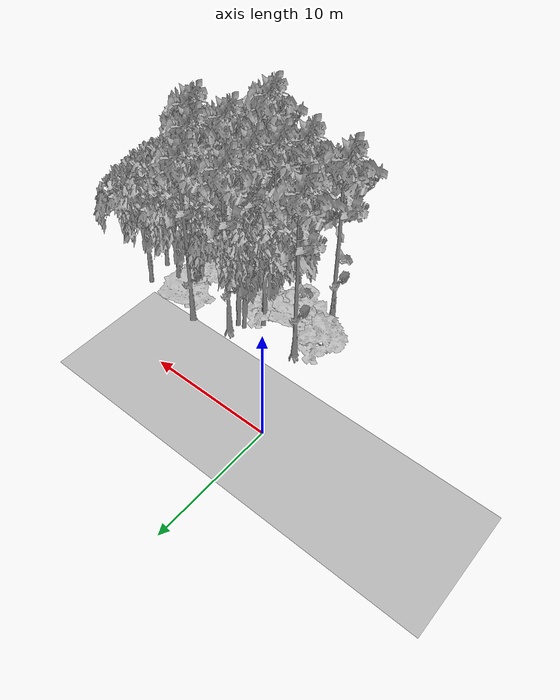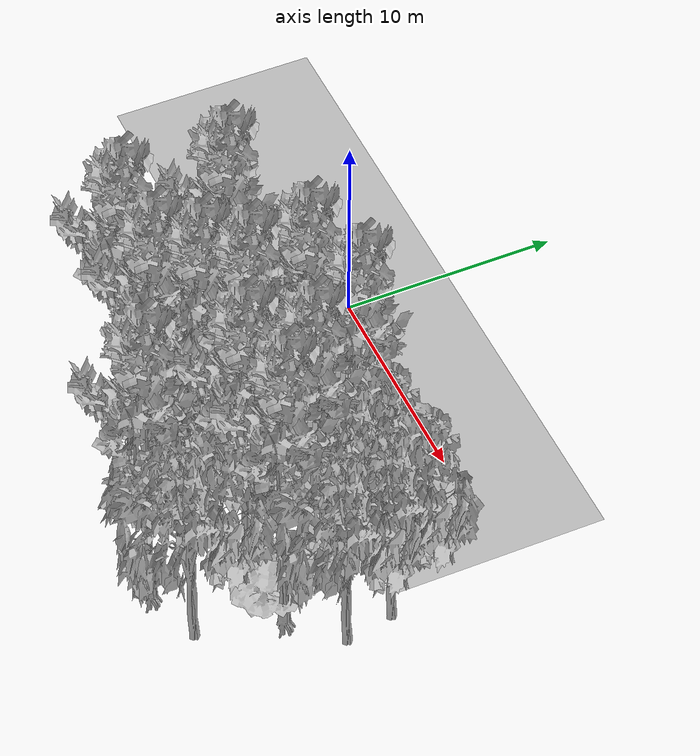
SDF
<sdf version="1.7">
 <world name="default">
  <model name="ground_plane">
   <static>1</static>
   <link name="link">
    <collision name="collision">
     <pose>-50 0 0 0 -0 0</pose>
     <geometry><plane><normal>0 0 1</normal><size>100 100</size></plane></geometry>
     <surface><contact><ode><min_depth>0.01</min_depth><max_vel>0</max_vel></ode></contact></surface>
    </collision>
    <visual name="grass">
     <cast_shadows>0</cast_shadows>
     <geometry>
      <mesh>
       <scale>0.5814285714285714 0.18142857142857144 0.1</scale>
       <uri>file://grass_plane/meshes/grass_plane.dae</uri>
      </mesh>
     </geometry>
    </visual>
   </link>
  </model>
  <model name="Tree 11">
   <static>1</static>
   <pose>17.115944217894665 -7.905770410894978 0 1.57079 -0 0</pose>
   <link name="link">
    <collision name="collision">
     <geometry><mesh><scale>3.5 5 3.5</scale><uri>model://tree_2/meshes/tree_2.obj</uri></mesh></geometry>
    </collision>
    <visual name="visual">
     <geometry><mesh><scale>3.5 5 3.5</scale><uri>model://tree_2/meshes/tree_2.obj</uri></mesh></geometry>
    </visual>
   </link>
  </model>
  <model name="Tree 62">
   <static>1</static>
   <pose>13.231138207050144 -8.463050441155573 0 1.57079 -0 0</pose>
   <link name="link">
    <collision name="collision">
     <geometry><mesh><scale>4 2.5 4</scale><uri>model://tree_1/meshes/tree_1.obj</uri></mesh></geometry>
    </collision>
    <visual name="visual">
     <geometry><mesh><scale>4 2.5 4</scale><uri>model://tree_1/meshes/tree_1.obj</uri></mesh></geometry>
    </visual>
   </link>
  </model>
  <model name="Tree 63">
   <static>1</static>
   <pose>8.307134985750139 -10.05008599282835 0 1.57079 -0 0</pose>
   <link name="link">
    <collision name="collision">
     <geometry><mesh><scale>3.5 5 3.5</scale><uri>model://tree_2/meshes/tree_2.obj</uri></mesh></geometry>
    </collision>
    <visual name="visual">
     <geometry><mesh><scale>3.5 5 3.5</scale><uri>model://tree_2/meshes/tree_2.obj</uri></mesh></geometry>
    </visual>
   </link>
  </model>
  <model name="Tree 74">
   <static>1</static>
   <pose>12.858057887556477 -6.079885390682374 0 1.57079 -0 0</pose>
   <link name="link">
    <collision name="collision">
     <geometry><mesh><scale>3 2 3</scale><uri>model://tree_3/meshes/tree_3.obj</uri></mesh></geometry>
    </collision>
    <visual name="visual">
     <geometry><mesh><scale>3 2 3</scale><uri>model://tree_3/meshes/tree_3.obj</uri></mesh></geometry>
    </visual>
   </link>
  </model>
  <model name="Tree 78">
   <static>1</static>
   <pose>11.570252639479634 -14.398460478798809 0 1.57079 -0 0</pose>
   <link name="link">
    <collision name="collision">
     <geometry><mesh><scale>3.5 5 3.5</scale><uri>model://tree_9/meshes/tree_9.obj</uri></mesh></geometry>
    </collision>
    <visual name="visual">
     <geometry><mesh><scale>3.5 5 3.5</scale><uri>model://tree_9/meshes/tree_9.obj</uri></mesh></geometry>
    </visual>
   </link>
  </model>
  <model name="Tree 92">
   <static>1</static>
   <pose>13.191549096305835 -7.757952104799223 0 1.57079 -0 0</pose>
   <link name="link">
    <collision name="collision">
     <geometry><mesh><scale>3.5 5 3.5</scale><uri>model://tree_9/meshes/tree_9.obj</uri></mesh></geometry>
    </collision>
    <visual name="visual">
     <geometry><mesh><scale>3.5 5 3.5</scale><uri>model://tree_9/meshes/tree_9.obj</uri></mesh></geometry>
    </visual>
   </link>
  </model>
  <model name="Tree 95">
   <static>1</static>
   <pose>12.088441866350713 -10.234358862264763 0 1.57079 -0 0</pose>
   <link name="link">
    <collision name="collision">
     <geometry><mesh><scale>3.5 5 3.5</scale><uri>model://tree_9/meshes/tree_9.obj</uri></mesh></geometry>
    </collision>
    <visual name="visual">
     <geometry><mesh><scale>3.5 5 3.5</scale><uri>model://tree_9/meshes/tree_9.obj</uri></mesh></geometry>
    </visual>
   </link>
  </model>
  <model name="Tree 120">
   <static>1</static>
   <pose>15.09499490790094 -9.813930821771596 0 1.57079 -0 0</pose>
   <link name="link">
    <collision name="collision">
     <geometry><mesh><scale>3.5 5 3.5</scale><uri>model://tree_9/meshes/tree_9.obj</uri></mesh></geometry>
    </collision>
    <visual name="visual">
     <geometry><mesh><scale>3.5 5 3.5</scale><uri>model://tree_9/meshes/tree_9.obj</uri></mesh></geometry>
    </visual>
   </link>
  </model>
  <model name="Tree 140">
   <static>1</static>
   <pose>8.337698952598707 -8.46853679861303 0 1.57079 -0 0</pose>
   <link name="link">
    <collision name="collision">
     <geometry><mesh><scale>3.5 5 3.5</scale><uri>model://tree_9/meshes/tree_9.obj</uri></mesh></geometry>
    </collision>
    <visual name="visual">
     <geometry><mesh><scale>3.5 5 3.5</scale><uri>model://tree_9/meshes/tree_9.obj</uri></mesh></geometry>
    </visual>
   </link>
  </model>
  <model name="Tree 145">
   <static>1</static>
   <pose>6.445347137249158 -7.908443750524055 0 1.57079 -0 0</pose>
   <link name="link">
    <collision name="collision">
     <geometry><mesh><scale>3.5 5 3.5</scale><uri>model://tree_2/meshes/tree_2.obj</uri></mesh></geometry>
    </collision>
    <visual name="visual">
     <geometry><mesh><scale>3.5 5 3.5</scale><uri>model://tree_2/meshes/tree_2.obj</uri></mesh></geometry>
    </visual>
   </link>
  </model>
  <model name="Tree 156">
   <static>1</static>
   <pose>7.218501823391037 -10.068417350809515 0 1.57079 -0 0</pose>
   <link name="link">
    <collision name="collision">
     <geometry><mesh><scale>3.5 5 3.5</scale><uri>model://tree_9/meshes/tree_9.obj</uri></mesh></geometry>
    </collision>
    <visual name="visual">
     <geometry><mesh><scale>3.5 5 3.5</scale><uri>model://tree_9/meshes/tree_9.obj</uri></mesh></geometry>
    </visual>
   </link>
  </model>
  <model name="Tree 164">
   <static>1</static>
   <pose>14.264760091277466 -13.604748663982253 0 1.57079 -0 0</pose>
   <link name="link">
    <collision name="collision">
     <geometry><mesh><scale>3.5 5 3.5</scale><uri>model://tree_2/meshes/tree_2.obj</uri></mesh></geometry>
    </collision>
    <visual name="visual">
     <geometry><mesh><scale>3.5 5 3.5</scale><uri>model://tree_2/meshes/tree_2.obj</uri></mesh></geometry>
    </visual>
   </link>
  </model>
  <model name="Tree 182">
   <static>1</static>
   <pose>11.169156942441788 -4.7713549483702735 0 1.57079 -0 0</pose>
   <link name="link">
    <collision name="collision">
     <geometry><mesh><scale>3.5 5 3.5</scale><uri>model://tree_9/meshes/tree_9.obj</uri></mesh></geometry>
    </collision>
    <visual name="visual">
     <geometry><mesh><scale>3.5 5 3.5</scale><uri>model://tree_9/meshes/tree_9.obj</uri></mesh></geometry>
    </visual>
   </link>
  </model>
  <model name="Tree 184">
   <static>1</static>
   <pose>7.419198701659425 -6.738774984700637 0 1.57079 -0 0</pose>
   <link name="link">
    <collision name="collision">
     <geometry><mesh><scale>3.5 5 3.5</scale><uri>model://tree_2/meshes/tree_2.obj</uri></mesh></geometry>
    </collision>
    <visual name="visual">
     <geometry><mesh><scale>3.5 5 3.5</scale><uri>model://tree_2/meshes/tree_2.obj</uri></mesh></geometry>
    </visual>
   </link>
  </model>
  <model name="Tree 204">
   <static>1</static>
   <pose>16.678788451688305 -5.664729370924027 0 1.57079 -0 0</pose>
   <link name="link">
    <collision name="collision">
     <geometry><mesh><scale>3.5 5 3.5</scale><uri>model://tree_2/meshes/tree_2.obj</uri></mesh></geometry>
    </collision>
    <visual name="visual">
     <geometry><mesh><scale>3.5 5 3.5</scale><uri>model://tree_2/meshes/tree_2.obj</uri></mesh></geometry>
    </visual>
   </link>
  </model>
  <model name="Tree 210">
   <static>1</static>
   <pose>1.438652229952048 -8.731877905395109 0 1.57079 -0 0</pose>
   <link name="link">
    <collision name="collision">
     <geometry><mesh><scale>4 2.5 4</scale><uri>model://tree_1/meshes/tree_1.obj</uri></mesh></geometry>
    </collision>
    <visual name="visual">
     <geometry><mesh><scale>4 2.5 4</scale><uri>model://tree_1/meshes/tree_1.obj</uri></mesh></geometry>
    </visual>
   </link>
  </model>
  <model name="Tree 231">
   <static>1</static>
   <pose>4.525763436570536 -10.571509942019581 0 1.57079 -0 0</pose>
   <link name="link">
    <collision name="collision">
     <geometry><mesh><scale>3 2 3</scale><uri>model://tree_3/meshes/tree_3.obj</uri></mesh></geometry>
    </collision>
    <visual name="visual">
     <geometry><mesh><scale>3 2 3</scale><uri>model://tree_3/meshes/tree_3.obj</uri></mesh></geometry>
    </visual>
   </link>
  </model>
  <model name="Tree 233">
   <static>1</static>
   <pose>8.196543219705404 -5.739956666610377 0 1.57079 -0 0</pose>
   <link name="link">
    <collision name="collision">
     <geometry><mesh><scale>3.5 5 3.5</scale><uri>model://tree_9/meshes/tree_9.obj</uri></mesh></geometry>
    </collision>
    <visual name="visual">
     <geometry><mesh><scale>3.5 5 3.5</scale><uri>model://tree_9/meshes/tree_9.obj</uri></mesh></geometry>
    </visual>
   </link>
  </model>
  <model name="Tree 235">
   <static>1</static>
   <pose>6.107114013914732 -11.66629552785227 0 1.57079 -0 0</pose>
   <link name="link">
    <collision name="collision">
     <geometry><mesh><scale>3.5 5 3.5</scale><uri>model://tree_9/meshes/tree_9.obj</uri></mesh></geometry>
    </collision>
    <visual name="visual">
     <geometry><mesh><scale>3.5 5 3.5</scale><uri>model://tree_9/meshes/tree_9.obj</uri></mesh></geometry>
    </visual>
   </link>
  </model>
  <model name="Tree 238">
   <static>1</static>
   <pose>2.819196868599903 -7.053600432087342 0 1.57079 -0 0</pose>
   <link name="link">
    <collision name="collision">
     <geometry><mesh><scale>3.5 5 3.5</scale><uri>model://tree_9/meshes/tree_9.obj</uri></mesh></geometry>
    </collision>
    <visual name="visual">
     <geometry><mesh><scale>3.5 5 3.5</scale><uri>model://tree_9/meshes/tree_9.obj</uri></mesh></geometry>
    </visual>
   </link>
  </model>
  <model name="Tree 243">
   <static>1</static>
   <pose>13.678457821021688 -9.556537115803161 0 1.57079 -0 0</pose>
   <link name="link">
    <collision name="collision">
     <geometry><mesh><scale>4 2.5 4</scale><uri>model://tree_1/meshes/tree_1.obj</uri></mesh></geometry>
    </collision>
    <visual name="visual">
     <geometry><mesh><scale>4 2.5 4</scale><uri>model://tree_1/meshes/tree_1.obj</uri></mesh></geometry>
    </visual>
   </link>
  </model>
  <model name="Tree 246">
   <static>1</static>
   <pose>7.963912267688642 -6.652316575052414 0 1.57079 -0 0</pose>
   <link name="link">
    <collision name="collision">
     <geometry><mesh><scale>3.5 5 3.5</scale><uri>model://tree_2/meshes/tree_2.obj</uri></mesh></geometry>
    </collision>
    <visual name="visual">
     <geometry><mesh><scale>3.5 5 3.5</scale><uri>model://tree_2/meshes/tree_2.obj</uri></mesh></geometry>
    </visual>
   </link>
  </model>
  <model name="Tree 258">
   <static>1</static>
   <pose>6.84631774262143 -8.819140455173248 0 1.57079 -0 0</pose>
   <link name="link">
    <collision name="collision">
     <geometry><mesh><scale>4 2.5 4</scale><uri>model://tree_1/meshes/tree_1.obj</uri></mesh></geometry>
    </collision>
    <visual name="visual">
     <geometry><mesh><scale>4 2.5 4</scale><uri>model://tree_1/meshes/tree_1.obj</uri></mesh></geometry>
    </visual>
   </link>
  </model>
  <model name="Tree 260">
   <static>1</static>
   <pose>4.850788017569272 -9.67074966503081 0 1.57079 -0 0</pose>
   <link name="link">
    <collision name="collision">
     <geometry><mesh><scale>3 2 3</scale><uri>model://tree_3/meshes/tree_3.obj</uri></mesh></geometry>
    </collision>
    <visual name="visual">
     <geometry><mesh><scale>3 2 3</scale><uri>model://tree_3/meshes/tree_3.obj</uri></mesh></geometry>
    </visual>
   </link>
  </model>
  <model name="Tree 281">
   <static>1</static>
   <pose>2.7333821706603914 -11.698973541440884 0 1.57079 -0 0</pose>
   <link name="link">
    <collision name="collision">
     <geometry><mesh><scale>3.5 5 3.5</scale><uri>model://tree_9/meshes/tree_9.obj</uri></mesh></geometry>
    </collision>
    <visual name="visual">
     <geometry><mesh><scale>3.5 5 3.5</scale><uri>model://tree_9/meshes/tree_9.obj</uri></mesh></geometry>
    </visual>
   </link>
  </model>
  <model name="Tree 285">
   <static>1</static>
   <pose>13.827357892807044 -6.105073703467452 0 1.57079 -0 0</pose>
   <link name="link">
    <collision name="collision">
     <geometry><mesh><scale>3.5 5 3.5</scale><uri>model://tree_2/meshes/tree_2.obj</uri></mesh></geometry>
    </collision>
    <visual name="visual">
     <geometry><mesh><scale>3.5 5 3.5</scale><uri>model://tree_2/meshes/tree_2.obj</uri></mesh></geometry>
    </visual>
   </link>
  </model>
 </world>
</sdf>
